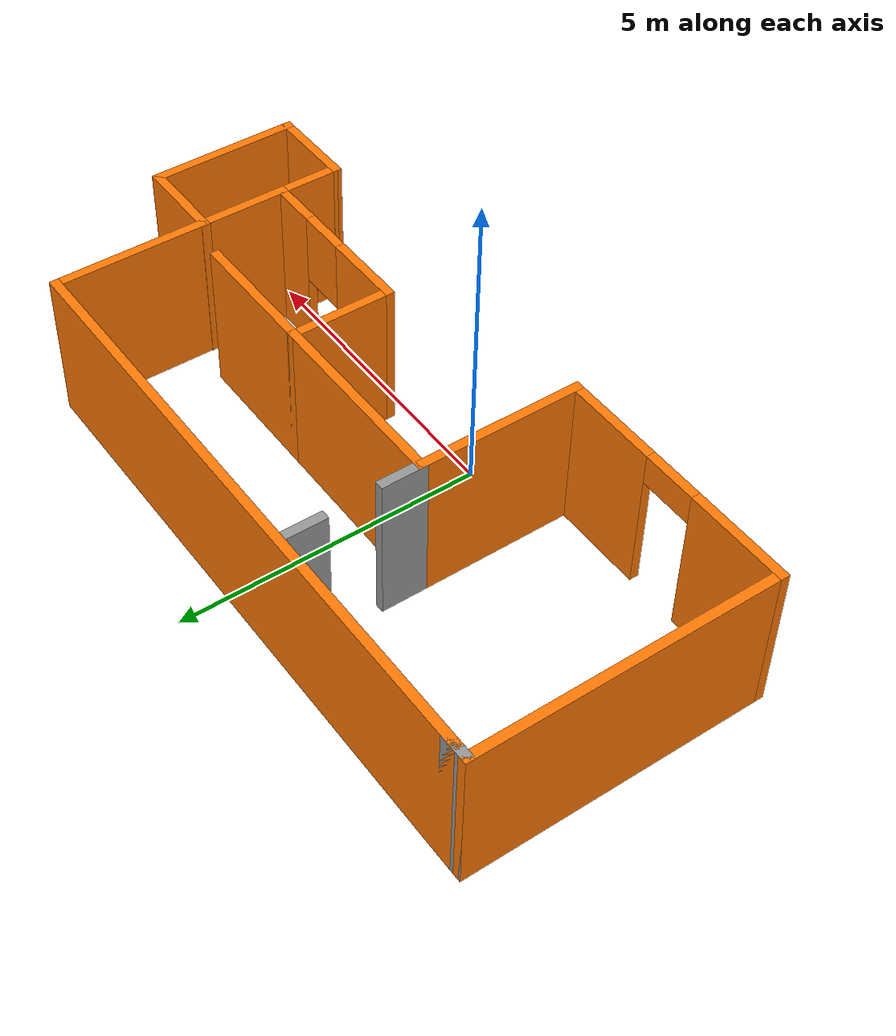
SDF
<?xml version='1.0'?>
<sdf version='1.6'>
  <model name='Building_Home_world'>
    <pose frame=''>0.236074 1.71896 0 0 -0 0</pose>
    <link name='Wall_18'>
      <collision name='Wall_18_Collision'>
        <geometry>
          <box>
            <size>10 0.15 2.5</size>
          </box>
        </geometry>
        <pose frame=''>0 0 1.25 0 -0 0</pose>
      </collision>
      <visual name='Wall_18_Visual'>
        <pose frame=''>0 0 1.25 0 -0 0</pose>
        <geometry>
          <box>
            <size>10 0.15 2.5</size>
          </box>
        </geometry>
        <material>
          <script>
            <uri>file://media/materials/scripts/gazebo.material</uri>
            <name>Gazebo/Grey</name>
          </script>
          <ambient>0.996078 0.47451 0.0196078 1</ambient>
        </material>
        <meta>
          <layer>0</layer>
        </meta>
      </visual>
      <pose frame=''>-0.55901 2.425 0 0 -0 0</pose>
    </link>
    <link name='Wall_19'>
      <collision name='Wall_19_Collision'>
        <geometry>
          <box>
            <size>3.98561 0.15 2.5</size>
          </box>
        </geometry>
        <pose frame=''>0 0 1.25 0 -0 0</pose>
      </collision>
      <visual name='Wall_19_Visual'>
        <pose frame=''>0 0 1.25 0 -0 0</pose>
        <geometry>
          <box>
            <size>3.98561 0.15 2.5</size>
          </box>
        </geometry>
        <material>
          <script>
            <uri>file://media/materials/scripts/gazebo.material</uri>
            <name>Gazebo/Grey</name>
          </script>
          <ambient>0.996078 0.47451 0.0196078 1</ambient>
        </material>
        <meta>
          <layer>0</layer>
        </meta>
      </visual>
      <pose frame=''>4.35878 0.492791 0 0 -0 -1.57455</pose>
    </link>
    <link name='Wall_20'>
      <pose frame=''>2.92657 -1.425 0 0 -0 3.14159</pose>
      <visual name='Wall_20_Visual_0'>
        <pose frame=''>-1.06262 0 1.25 0 -0 0</pose>
        <geometry>
          <box>
            <size>0.874762 0.15 2.5</size>
          </box>
        </geometry>
        <material>
          <script>
            <uri>file://media/materials/scripts/gazebo.material</uri>
            <name>Gazebo/Grey</name>
          </script>
          <ambient>0.996078 0.47451 0.0196078 1</ambient>
        </material>
        <meta>
          <layer>0</layer>
        </meta>
      </visual>
      <collision name='Wall_20_Collision_0'>
        <geometry>
          <box>
            <size>0.874762 0.15 2.5</size>
          </box>
        </geometry>
        <pose frame=''>-1.06262 0 1.25 0 -0 0</pose>
      </collision>
      <visual name='Wall_20_Visual_1'>
        <pose frame=''>0.437381 0 0.25 0 -0 0</pose>
        <geometry>
          <box>
            <size>2.12524 0.15 0.5</size>
          </box>
        </geometry>
        <material>
          <script>
            <uri>file://media/materials/scripts/gazebo.material</uri>
            <name>Gazebo/Grey</name>
          </script>
          <ambient>0.996078 0.47451 0.0196078 1</ambient>
        </material>
        <meta>
          <layer>0</layer>
        </meta>
      </visual>
      <collision name='Wall_20_Collision_1'>
        <geometry>
          <box>
            <size>2.12524 0.15 0.5</size>
          </box>
        </geometry>
        <pose frame=''>0.437381 0 0.25 0 -0 0</pose>
      </collision>
      <visual name='Wall_20_Visual_2'>
        <pose frame=''>0.837381 0 1.5 0 -0 0</pose>
        <geometry>
          <box>
            <size>1.32524 0.15 2</size>
          </box>
        </geometry>
        <material>
          <script>
            <uri>file://media/materials/scripts/gazebo.material</uri>
            <name>Gazebo/Grey</name>
          </script>
          <ambient>0.996078 0.47451 0.0196078 1</ambient>
        </material>
        <meta>
          <layer>0</layer>
        </meta>
      </visual>
      <collision name='Wall_20_Collision_2'>
        <geometry>
          <box>
            <size>1.32524 0.15 2</size>
          </box>
        </geometry>
        <pose frame=''>0.837381 0 1.5 0 -0 0</pose>
      </collision>
      <visual name='Wall_20_Visual_3'>
        <pose frame=''>-0.225238 0 1.9 0 -0 0</pose>
        <geometry>
          <box>
            <size>0.8 0.15 1.2</size>
          </box>
        </geometry>
        <material>
          <script>
            <uri>file://media/materials/scripts/gazebo.material</uri>
            <name>Gazebo/Grey</name>
          </script>
          <ambient>0.996078 0.47451 0.0196078 1</ambient>
        </material>
        <meta>
          <layer>0</layer>
        </meta>
      </visual>
      <collision name='Wall_20_Collision_3'>
        <geometry>
          <box>
            <size>0.8 0.15 1.2</size>
          </box>
        </geometry>
        <pose frame=''>-0.225238 0 1.9 0 -0 0</pose>
      </collision>
    </link>
    <link name='Wall_21'>
      <collision name='Wall_21_Collision'>
        <geometry>
          <box>
            <size>1.75 0.15 2.5</size>
          </box>
        </geometry>
        <pose frame=''>0 0 1.25 0 -0 0</pose>
      </collision>
      <visual name='Wall_21_Visual'>
        <pose frame=''>0 0 1.25 0 -0 0</pose>
        <geometry>
          <box>
            <size>1.75 0.15 2.5</size>
          </box>
        </geometry>
        <material>
          <script>
            <uri>file://media/materials/scripts/gazebo.material</uri>
            <name>Gazebo/Grey</name>
          </script>
          <ambient>0.996078 0.47451 0.0196078 1</ambient>
        </material>
        <meta>
          <layer>0</layer>
        </meta>
      </visual>
      <pose frame=''>1.50157 -0.625 0 0 -0 1.5708</pose>
    </link>
    <link name='Wall_22'>
      <collision name='Wall_22_Collision'>
        <geometry>
          <box>
            <size>3.25 0.15 2.5</size>
          </box>
        </geometry>
        <pose frame=''>0 0 1.25 0 -0 0</pose>
      </collision>
      <visual name='Wall_22_Visual'>
        <pose frame=''>0 0 1.25 0 -0 0</pose>
        <geometry>
          <box>
            <size>3.25 0.15 2.5</size>
          </box>
        </geometry>
        <material>
          <script>
            <uri>file://media/materials/scripts/gazebo.material</uri>
            <name>Gazebo/Grey</name>
          </script>
          <ambient>0.996078 0.47451 0.0196078 1</ambient>
        </material>
        <meta>
          <layer>0</layer>
        </meta>
      </visual>
      <pose frame=''>-0.048427 0.175 0 0 -0 3.14159</pose>
    </link>
    <link name='Wall_23'>
      <collision name='Wall_23_Collision'>
        <geometry>
          <box>
            <size>2.75 0.15 2.5</size>
          </box>
        </geometry>
        <pose frame=''>0 0 1.25 0 -0 0</pose>
      </collision>
      <visual name='Wall_23_Visual'>
        <pose frame=''>0 0 1.25 0 -0 0</pose>
        <geometry>
          <box>
            <size>2.75 0.15 2.5</size>
          </box>
        </geometry>
        <material>
          <script>
            <uri>file://media/materials/scripts/gazebo.material</uri>
            <name>Gazebo/Grey</name>
          </script>
          <ambient>0.996078 0.47451 0.0196078 1</ambient>
        </material>
        <meta>
          <layer>0</layer>
        </meta>
      </visual>
      <pose frame=''>-1.59843 -1.125 0 0 -0 -1.5708</pose>
    </link>
    <link name='Wall_24'>
      <pose frame=''>-3.64843 -2.425 0 0 -0 3.14159</pose>
      <visual name='Wall_24_Visual_0'>
        <pose frame=''>-1.29961 0 1.25 0 -0 0</pose>
        <geometry>
          <box>
            <size>1.65078 0.15 2.5</size>
          </box>
        </geometry>
        <material>
          <script>
            <uri>file://media/materials/scripts/gazebo.material</uri>
            <name>Gazebo/Grey</name>
          </script>
          <ambient>0.996078 0.47451 0.0196078 1</ambient>
        </material>
        <meta>
          <layer>0</layer>
        </meta>
      </visual>
      <collision name='Wall_24_Collision_0'>
        <geometry>
          <box>
            <size>1.65078 0.15 2.5</size>
          </box>
        </geometry>
        <pose frame=''>-1.29961 0 1.25 0 -0 0</pose>
      </collision>
      <visual name='Wall_24_Visual_1'>
        <pose frame=''>1.27539 0 1.25 0 -0 0</pose>
        <geometry>
          <box>
            <size>1.69922 0.15 2.5</size>
          </box>
        </geometry>
        <material>
          <script>
            <uri>file://media/materials/scripts/gazebo.material</uri>
            <name>Gazebo/Grey</name>
          </script>
          <ambient>0.996078 0.47451 0.0196078 1</ambient>
        </material>
        <meta>
          <layer>0</layer>
        </meta>
      </visual>
      <collision name='Wall_24_Collision_1'>
        <geometry>
          <box>
            <size>1.69922 0.15 2.5</size>
          </box>
        </geometry>
        <pose frame=''>1.27539 0 1.25 0 -0 0</pose>
      </collision>
      <visual name='Wall_24_Visual_2'>
        <pose frame=''>-0.024218 0 2.25 0 -0 0</pose>
        <geometry>
          <box>
            <size>0.9 0.15 0.5</size>
          </box>
        </geometry>
        <material>
          <script>
            <uri>file://media/materials/scripts/gazebo.material</uri>
            <name>Gazebo/Grey</name>
          </script>
          <ambient>0.996078 0.47451 0.0196078 1</ambient>
        </material>
        <meta>
          <layer>0</layer>
        </meta>
      </visual>
      <collision name='Wall_24_Collision_2'>
        <geometry>
          <box>
            <size>0.9 0.15 0.5</size>
          </box>
        </geometry>
        <pose frame=''>-0.024218 0 2.25 0 -0 0</pose>
      </collision>
    </link>
    <link name='Wall_25'>
      <collision name='Wall_25_Collision'>
        <geometry>
          <box>
            <size>5 0.15 2.5</size>
          </box>
        </geometry>
        <pose frame=''>0 0 1.25 0 -0 0</pose>
      </collision>
      <visual name='Wall_25_Visual'>
        <pose frame=''>0 0 1.25 0 -0 0</pose>
        <geometry>
          <box>
            <size>5 0.15 2.5</size>
          </box>
        </geometry>
        <material>
          <script>
            <uri>file://media/materials/scripts/gazebo.material</uri>
            <name>Gazebo/Grey</name>
          </script>
          <ambient>0.996078 0.47451 0.0196078 1</ambient>
        </material>
        <meta>
          <layer>0</layer>
        </meta>
      </visual>
      <pose frame=''>-5.69843 -0 0 0 -0 1.5708</pose>
    </link>
    <link name='Wall_26'>
      <collision name='Wall_26_Collision'>
        <geometry>
          <box>
            <size>0.5 0.15 2.5</size>
          </box>
        </geometry>
        <pose frame=''>0 0 1.25 0 -0 0</pose>
      </collision>
      <visual name='Wall_26_Visual'>
        <pose frame=''>0 0 1.25 0 -0 0</pose>
        <geometry>
          <box>
            <size>0.5 0.15 2.5</size>
          </box>
        </geometry>
        <material>
          <script>
            <uri>file://media/materials/scripts/gazebo.material</uri>
            <name>Gazebo/Grey</name>
          </script>
          <ambient>1 1 1 1</ambient>
        </material>
        <meta>
          <layer>0</layer>
        </meta>
      </visual>
      <pose frame=''>-5.52343 2.425 0 0 -0 0</pose>
    </link>
    <link name='Wall_28'>
      <collision name='Wall_28_Collision'>
        <geometry>
          <box>
            <size>2.25 0.15 2.5</size>
          </box>
        </geometry>
        <pose frame=''>0 0 1.25 0 -0 0</pose>
      </collision>
      <visual name='Wall_28_Visual'>
        <pose frame=''>0 0 1.25 0 -0 0</pose>
        <geometry>
          <box>
            <size>2.25 0.15 2.5</size>
          </box>
        </geometry>
        <material>
          <script>
            <uri>file://media/materials/scripts/gazebo.material</uri>
            <name>Gazebo/Grey</name>
          </script>
          <ambient>0.996078 0.47451 0.0196078 1</ambient>
        </material>
        <meta>
          <layer>0</layer>
        </meta>
      </visual>
      <pose frame=''>2.55157 0.175 0 0 -0 0</pose>
    </link>
    <link name='Wall_30'>
      <collision name='Wall_30_Collision'>
        <geometry>
          <box>
            <size>1.5 0.15 2.5</size>
          </box>
        </geometry>
        <pose frame=''>0 0 1.25 0 -0 0</pose>
      </collision>
      <visual name='Wall_30_Visual'>
        <pose frame=''>0 0 1.25 0 -0 0</pose>
        <geometry>
          <box>
            <size>1.5 0.15 2.5</size>
          </box>
        </geometry>
        <material>
          <script>
            <uri>file://media/materials/scripts/gazebo.material</uri>
            <name>Gazebo/Grey</name>
          </script>
          <ambient>0.996078 0.47451 0.0196078 1</ambient>
        </material>
        <meta>
          <layer>0</layer>
        </meta>
      </visual>
      <pose frame=''>5.02343 -0.040318 0 0 -0 0</pose>
    </link>
    <link name='Wall_31'>
      <collision name='Wall_31_Collision'>
        <geometry>
          <box>
            <size>2.5 0.15 2.5</size>
          </box>
        </geometry>
        <pose frame=''>0 0 1.25 0 -0 0</pose>
      </collision>
      <visual name='Wall_31_Visual'>
        <pose frame=''>0 0 1.25 0 -0 0</pose>
        <geometry>
          <box>
            <size>2.5 0.15 2.5</size>
          </box>
        </geometry>
        <material>
          <script>
            <uri>file://media/materials/scripts/gazebo.material</uri>
            <name>Gazebo/Grey</name>
          </script>
          <ambient>0.996078 0.47451 0.0196078 1</ambient>
        </material>
        <meta>
          <layer>0</layer>
        </meta>
      </visual>
      <pose frame=''>5.69843 -1.21532 0 0 -0 -1.5708</pose>
    </link>
    <link name='Wall_32'>
      <collision name='Wall_32_Collision'>
        <geometry>
          <box>
            <size>1.5 0.15 2.5</size>
          </box>
        </geometry>
        <pose frame=''>0 0 1.25 0 -0 0</pose>
      </collision>
      <visual name='Wall_32_Visual'>
        <pose frame=''>0 0 1.25 0 -0 0</pose>
        <geometry>
          <box>
            <size>1.5 0.15 2.5</size>
          </box>
        </geometry>
        <material>
          <script>
            <uri>file://media/materials/scripts/gazebo.material</uri>
            <name>Gazebo/Grey</name>
          </script>
          <ambient>0.996078 0.47451 0.0196078 1</ambient>
        </material>
        <meta>
          <layer>0</layer>
        </meta>
      </visual>
      <pose frame=''>5.02343 -2.39032 0 0 -0 3.14159</pose>
    </link>
    <link name='Wall_33'>
      <collision name='Wall_33_Collision'>
        <geometry>
          <box>
            <size>1.11532 0.15 2.5</size>
          </box>
        </geometry>
        <pose frame=''>0 0 1.25 0 -0 0</pose>
      </collision>
      <visual name='Wall_33_Visual'>
        <pose frame=''>0 0 1.25 0 -0 0</pose>
        <geometry>
          <box>
            <size>1.11532 0.15 2.5</size>
          </box>
        </geometry>
        <material>
          <script>
            <uri>file://media/materials/scripts/gazebo.material</uri>
            <name>Gazebo/Grey</name>
          </script>
          <ambient>0.996078 0.47451 0.0196078 1</ambient>
        </material>
        <meta>
          <layer>0</layer>
        </meta>
      </visual>
      <pose frame=''>4.35 -1.90766 0 0 -0 1.56754</pose>
    </link>
    <link name='Wall_36'>
      <collision name='Wall_36_Collision'>
        <geometry>
          <box>
            <size>0.75 0.15 2.5</size>
          </box>
        </geometry>
        <pose frame=''>0 0 1.25 0 -0 0</pose>
      </collision>
      <visual name='Wall_36_Visual'>
        <pose frame=''>0 0 1.25 0 -0 0</pose>
        <geometry>
          <box>
            <size>0.75 0.15 2.5</size>
          </box>
        </geometry>
        <material>
          <script>
            <uri>file://media/materials/scripts/gazebo.material</uri>
            <name>Gazebo/Grey</name>
          </script>
          <ambient>1 1 1 1</ambient>
        </material>
        <meta>
          <layer>0</layer>
        </meta>
      </visual>
      <pose frame=''>-1.59843 0.475 0 0 -0 1.5708</pose>
    </link>
    <link name='Wall_38'>
      <collision name='Wall_38_Collision'>
        <geometry>
          <box>
            <size>0.75 0.15 2.5</size>
          </box>
        </geometry>
        <pose frame=''>0 0 1.25 0 -0 0</pose>
      </collision>
      <visual name='Wall_38_Visual'>
        <pose frame=''>0 0 1.25 0 -0 0</pose>
        <geometry>
          <box>
            <size>0.75 0.15 2.5</size>
          </box>
        </geometry>
        <material>
          <script>
            <uri>file://media/materials/scripts/gazebo.material</uri>
            <name>Gazebo/Grey</name>
          </script>
          <ambient>1 1 1 1</ambient>
        </material>
        <meta>
          <layer>0</layer>
        </meta>
      </visual>
      <pose frame=''>-1.63465 2.06733 0 0 -0 -1.5708</pose>
    </link>
    <static>1</static>
  </model>
</sdf>
